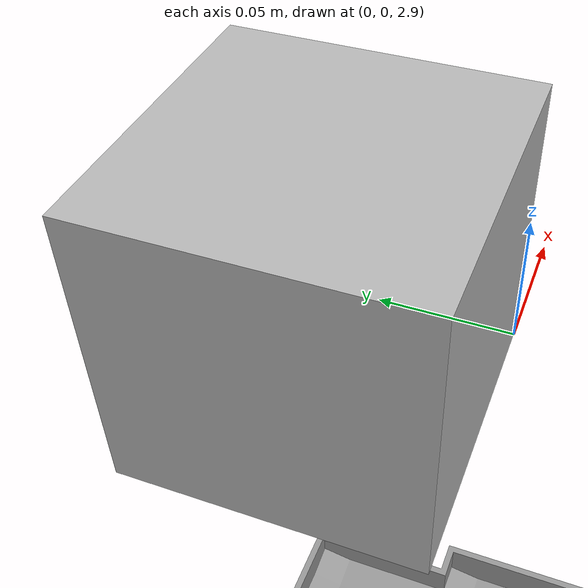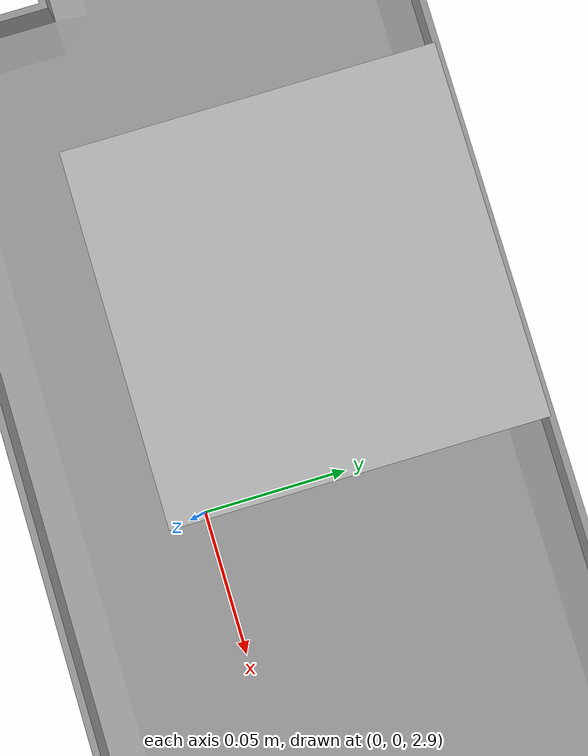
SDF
<?xml version="1.0" ?>
<!-- |    This document was autogenerated by xacro from /home/ecestudent/ecen490/ros_ws/src/gazebo_sim/worlds/soccer_field.world.xacro | -->
<!-- |    EDITING THIS FILE BY HAND IS NOT RECOMMENDED                                 | -->
<sdf version="1.4" xmlns:xacro="http://www.ros.org/wiki/xacro">
  <world name="default">
    <model name="camera">
      <pose>0 0 3 -1.5707 1.5707 0</pose>
      <static>true</static>
      <link name="link">
        <gravity>false</gravity>
        <pose>0.05 0.05 0.05 0 0 0</pose>
        <inertial>
          <mass>0.1</mass>
        </inertial>
        <visual name="visual">
          <geometry>
            <box>
              <size>0.1 0.1 0.1</size>
            </box>
          </geometry>
        </visual>
        <sensor name="camera" type="camera">
          <camera>
            <horizontal_fov>1.047</horizontal_fov>
            <image>
              <width>640</width>
              <height>480</height>
              <format>R8G8B8</format>
            </image>
            <clip>
              <near>0.1</near>
              <far>100</far>
            </clip>
            <noise>
              <type>gaussian</type>
              <mean>0.0</mean>
              <stddev>0.007</stddev>
            </noise>
          </camera>
          <always_on>1</always_on>
          <update_rate>10</update_rate>
          <plugin filename="libgazebo_ros_camera.so" name="camera_controller">
            <alwaysOn>true</alwaysOn>
            <updateRate>0.0</updateRate>
            <cameraName>camera1</cameraName>
            <imageTopicName>image_raw</imageTopicName>
            <cameraInfoTopicName>camera_info</cameraInfoTopicName>
            <frameName>camera_link</frameName>
            <hackBaseline>0.07</hackBaseline>
            <distortionK1>0.0</distortionK1>
            <distortionK2>0.0</distortionK2>
            <distortionK3>0.0</distortionK3>
            <distortionT1>0.0</distortionT1>
            <distortionT2>0.0</distortionT2>
          </plugin>
        </sensor>
      </link>
    </model>
    <model name="soccer_field">
      <static>true</static>
      <link name="link">
        <pose>0 0 0 0 0 0</pose>
        <collision name="collision">
          <geometry>
            <mesh>
              <uri>/home/ecestudent/ecen490/ros_ws/src/gazebo_sim/meshes/field9_collision.dae</uri>
            </mesh>
          </geometry>
          <surface>
            <friction>
              <ode>
                <mu>100</mu>
                <mu2>50</mu2>
              </ode>
            </friction>
          </surface>
        </collision>
        <visual name="visual">
          <geometry>
            <mesh>
              <uri>/home/ecestudent/ecen490/ros_ws/src/gazebo_sim/meshes/field9_visual.dae</uri>
            </mesh>
          </geometry>
          <material>
            <ambient>.3 .3 .3 1</ambient>
            <diffuse>.6 .6 .6 1</diffuse>
            <specular>0.01 0.01 0.01 1</specular>
            <emissive>0 0 0 0</emissive>
          </material>
        </visual>
      </link>
    </model>
    <include>
      <uri>model://sun</uri>
    </include>
  </world>
</sdf>
